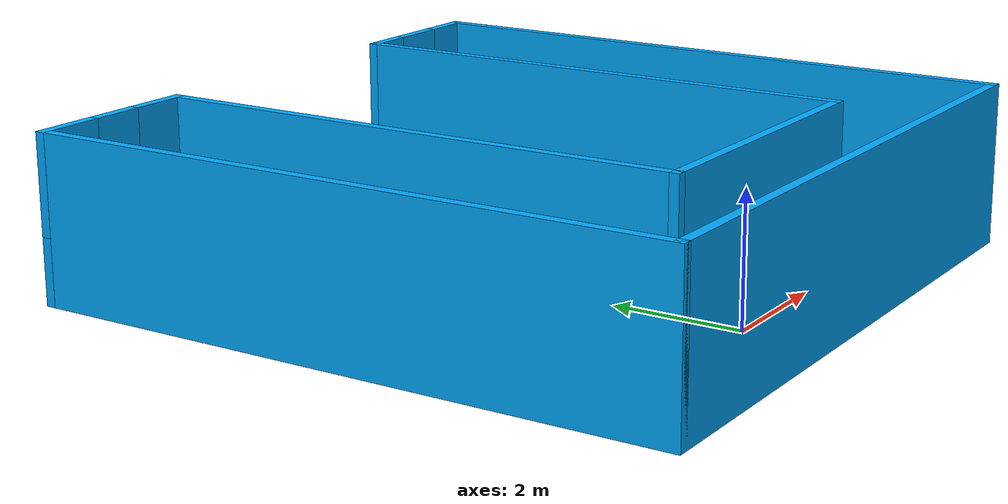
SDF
<?xml version='1.0'?>
<sdf version='1.6'>
  <model name='Untitled'>
    <pose frame=''>0.784642 3.66154 0 0 -0 0</pose>
    <link name='Wall_10'>
      <collision name='Wall_10_Collision'>
        <geometry>
          <box>
            <size>8.5 0.15 2.5</size>
          </box>
        </geometry>
        <pose frame=''>0 0 1.25 0 -0 0</pose>
      </collision>
      <visual name='Wall_10_Visual'>
        <pose frame=''>0 0 1.25 0 -0 0</pose>
        <geometry>
          <box>
            <size>8.5 0.15 2.5</size>
          </box>
        </geometry>
        <material>
          <script>
            <uri>file://media/materials/scripts/gazebo.material</uri>
            <name>Gazebo/Grey</name>
          </script>
          <ambient>0 0.666667 1 1</ambient>
        </material>
        <meta>
          <layer>0</layer>
        </meta>
      </visual>
      <pose frame=''>-2.275 0.75 0 0 -0 1.5708</pose>
    </link>
    <link name='Wall_11'>
      <pose frame=''>-3.6 4.925 0 0 -0 3.14159</pose>
      <visual name='Wall_11_Visual_0'>
        <pose frame=''>-0.915456 0 1.25 0 -0 0</pose>
        <geometry>
          <box>
            <size>0.969089 0.15 2.5</size>
          </box>
        </geometry>
        <material>
          <script>
            <uri>file://media/materials/scripts/gazebo.material</uri>
            <name>Gazebo/Grey</name>
          </script>
          <ambient>0 0.666667 1 1</ambient>
        </material>
        <meta>
          <layer>0</layer>
        </meta>
      </visual>
      <collision name='Wall_11_Collision_0'>
        <geometry>
          <box>
            <size>0.969089 0.15 2.5</size>
          </box>
        </geometry>
        <pose frame=''>-0.915456 0 1.25 0 -0 0</pose>
      </collision>
      <visual name='Wall_11_Visual_1'>
        <pose frame=''>0.484544 0 0.5 0 -0 0</pose>
        <geometry>
          <box>
            <size>1.83091 0.15 1</size>
          </box>
        </geometry>
        <material>
          <script>
            <uri>file://media/materials/scripts/gazebo.material</uri>
            <name>Gazebo/Grey</name>
          </script>
          <ambient>0 0.666667 1 1</ambient>
        </material>
        <meta>
          <layer>0</layer>
        </meta>
      </visual>
      <collision name='Wall_11_Collision_1'>
        <geometry>
          <box>
            <size>1.83091 0.15 1</size>
          </box>
        </geometry>
        <pose frame=''>0.484544 0 0.5 0 -0 0</pose>
      </collision>
      <visual name='Wall_11_Visual_2'>
        <pose frame=''>0.884544 0 1.75 0 -0 0</pose>
        <geometry>
          <box>
            <size>1.03091 0.15 1.5</size>
          </box>
        </geometry>
        <material>
          <script>
            <uri>file://media/materials/scripts/gazebo.material</uri>
            <name>Gazebo/Grey</name>
          </script>
          <ambient>0 0.666667 1 1</ambient>
        </material>
        <meta>
          <layer>0</layer>
        </meta>
      </visual>
      <collision name='Wall_11_Collision_2'>
        <geometry>
          <box>
            <size>1.03091 0.15 1.5</size>
          </box>
        </geometry>
        <pose frame=''>0.884544 0 1.75 0 -0 0</pose>
      </collision>
      <visual name='Wall_11_Visual_3'>
        <pose frame=''>-0.030911 0 2.15 0 -0 0</pose>
        <geometry>
          <box>
            <size>0.8 0.15 0.7</size>
          </box>
        </geometry>
        <material>
          <script>
            <uri>file://media/materials/scripts/gazebo.material</uri>
            <name>Gazebo/Grey</name>
          </script>
          <ambient>0 0.666667 1 1</ambient>
        </material>
        <meta>
          <layer>0</layer>
        </meta>
      </visual>
      <collision name='Wall_11_Collision_3'>
        <geometry>
          <box>
            <size>0.8 0.15 0.7</size>
          </box>
        </geometry>
        <pose frame=''>-0.030911 0 2.15 0 -0 0</pose>
      </collision>
    </link>
    <link name='Wall_4'>
      <collision name='Wall_4_Collision'>
        <geometry>
          <box>
            <size>10 0.15 2.5</size>
          </box>
        </geometry>
        <pose frame=''>0 0 1.25 0 -0 0</pose>
      </collision>
      <visual name='Wall_4_Visual'>
        <pose frame=''>0 0 1.25 0 -0 0</pose>
        <geometry>
          <box>
            <size>10 0.15 2.5</size>
          </box>
        </geometry>
        <material>
          <script>
            <uri>file://media/materials/scripts/gazebo.material</uri>
            <name>Gazebo/Grey</name>
          </script>
          <ambient>0 0.666667 1 1</ambient>
        </material>
        <meta>
          <layer>0</layer>
        </meta>
      </visual>
      <pose frame=''>-4.925 0 0 0 0 -1.5708</pose>
    </link>
    <link name='Wall_5'>
      <collision name='Wall_5_Collision'>
        <geometry>
          <box>
            <size>10 0.15 2.5</size>
          </box>
        </geometry>
        <pose frame=''>0 0 1.25 0 -0 0</pose>
      </collision>
      <visual name='Wall_5_Visual'>
        <pose frame=''>0 0 1.25 0 -0 0</pose>
        <geometry>
          <box>
            <size>10 0.15 2.5</size>
          </box>
        </geometry>
        <material>
          <script>
            <uri>file://media/materials/scripts/gazebo.material</uri>
            <name>Gazebo/Grey</name>
          </script>
          <ambient>0 0.666667 1 1</ambient>
        </material>
        <meta>
          <layer>0</layer>
        </meta>
      </visual>
      <pose frame=''>0 -4.925 0 0 -0 0</pose>
    </link>
    <link name='Wall_6'>
      <collision name='Wall_6_Collision'>
        <geometry>
          <box>
            <size>10 0.15 2.5</size>
          </box>
        </geometry>
        <pose frame=''>0 0 1.25 0 -0 0</pose>
      </collision>
      <visual name='Wall_6_Visual'>
        <pose frame=''>0 0 1.25 0 -0 0</pose>
        <geometry>
          <box>
            <size>10 0.15 2.5</size>
          </box>
        </geometry>
        <material>
          <script>
            <uri>file://media/materials/scripts/gazebo.material</uri>
            <name>Gazebo/Grey</name>
          </script>
          <ambient>0 0.666667 1 1</ambient>
        </material>
        <meta>
          <layer>0</layer>
        </meta>
      </visual>
      <pose frame=''>4.925 0 0 0 -0 1.5708</pose>
    </link>
    <link name='Wall_7'>
      <pose frame=''>3.75 4.925 0 0 -0 3.14159</pose>
      <visual name='Wall_7_Visual_0'>
        <pose frame=''>-0.827331 0 1.25 0 -0 0</pose>
        <geometry>
          <box>
            <size>0.845339 0.15 2.5</size>
          </box>
        </geometry>
        <material>
          <script>
            <uri>file://media/materials/scripts/gazebo.material</uri>
            <name>Gazebo/Grey</name>
          </script>
          <ambient>0 0.666667 1 1</ambient>
        </material>
        <meta>
          <layer>0</layer>
        </meta>
      </visual>
      <collision name='Wall_7_Collision_0'>
        <geometry>
          <box>
            <size>0.845339 0.15 2.5</size>
          </box>
        </geometry>
        <pose frame=''>-0.827331 0 1.25 0 -0 0</pose>
      </collision>
      <visual name='Wall_7_Visual_1'>
        <pose frame=''>0.872669 0 1.25 0 -0 0</pose>
        <geometry>
          <box>
            <size>0.754661 0.15 2.5</size>
          </box>
        </geometry>
        <material>
          <script>
            <uri>file://media/materials/scripts/gazebo.material</uri>
            <name>Gazebo/Grey</name>
          </script>
          <ambient>0 0.666667 1 1</ambient>
        </material>
        <meta>
          <layer>0</layer>
        </meta>
      </visual>
      <collision name='Wall_7_Collision_1'>
        <geometry>
          <box>
            <size>0.754661 0.15 2.5</size>
          </box>
        </geometry>
        <pose frame=''>0.872669 0 1.25 0 -0 0</pose>
      </collision>
      <visual name='Wall_7_Visual_2'>
        <pose frame=''>0.045339 0 2.25 0 -0 0</pose>
        <geometry>
          <box>
            <size>0.9 0.15 0.5</size>
          </box>
        </geometry>
        <material>
          <script>
            <uri>file://media/materials/scripts/gazebo.material</uri>
            <name>Gazebo/Grey</name>
          </script>
          <ambient>0 0.666667 1 1</ambient>
        </material>
        <meta>
          <layer>0</layer>
        </meta>
      </visual>
      <collision name='Wall_7_Collision_2'>
        <geometry>
          <box>
            <size>0.9 0.15 0.5</size>
          </box>
        </geometry>
        <pose frame=''>0.045339 0 2.25 0 -0 0</pose>
      </collision>
    </link>
    <link name='Wall_8'>
      <collision name='Wall_8_Collision'>
        <geometry>
          <box>
            <size>8.5 0.15 2.5</size>
          </box>
        </geometry>
        <pose frame=''>0 0 1.25 0 -0 0</pose>
      </collision>
      <visual name='Wall_8_Visual'>
        <pose frame=''>0 0 1.25 0 -0 0</pose>
        <geometry>
          <box>
            <size>8.5 0.15 2.5</size>
          </box>
        </geometry>
        <material>
          <script>
            <uri>file://media/materials/scripts/gazebo.material</uri>
            <name>Gazebo/Grey</name>
          </script>
          <ambient>0 0.666667 1 1</ambient>
        </material>
        <meta>
          <layer>0</layer>
        </meta>
      </visual>
      <pose frame=''>2.575 0.75 0 0 0 -1.5708</pose>
    </link>
    <link name='Wall_9'>
      <collision name='Wall_9_Collision'>
        <geometry>
          <box>
            <size>5 0.15 2.5</size>
          </box>
        </geometry>
        <pose frame=''>0 0 1.25 0 -0 0</pose>
      </collision>
      <visual name='Wall_9_Visual'>
        <pose frame=''>0 0 1.25 0 -0 0</pose>
        <geometry>
          <box>
            <size>5 0.15 2.5</size>
          </box>
        </geometry>
        <material>
          <script>
            <uri>file://media/materials/scripts/gazebo.material</uri>
            <name>Gazebo/Grey</name>
          </script>
          <ambient>0 0.666667 1 1</ambient>
        </material>
        <meta>
          <layer>0</layer>
        </meta>
      </visual>
      <pose frame=''>0.15 -3.425 0 0 -0 3.14159</pose>
    </link>
    <static>1</static>
  </model>
</sdf>
